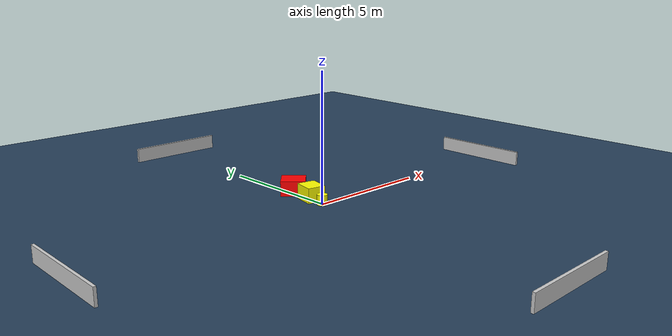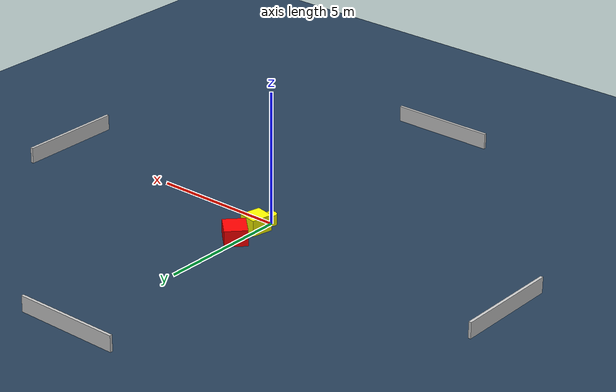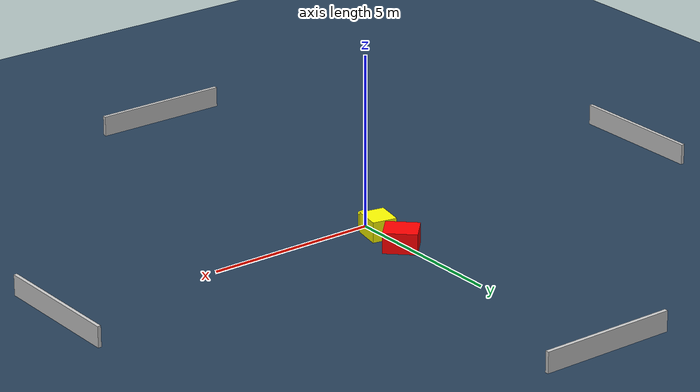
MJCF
<?xml version="1.0" ?>
<mujoco model="generated_environment">
  <option timestep="0.01" integrator="RK4" cone="elliptic"/>
  <default>
    <geom density="1"/>
  </default>
  <asset>
    <texture builtin="gradient" height="3072" name="skybox" rgb1="0.3 0.5 0.7" rgb2="0 0 0" type="skybox" width="512"/>
    <texture builtin="checker" height="300" name="groundplane" rgb1="0.2 0.3 0.4" rgb2="0.1 0.2 0.3" type="2d" width="300"/>
    <material name="groundplane" reflectance="0.2" texrepeat="5 5" texture="groundplane"/>
  </asset>
  <worldbody>
    <light dir="0 0 -1" directional="true" pos="0 0 1.5"/>
    <geom condim="3" friction="0.5 0.005 0.001" material="groundplane" name="floor" pos="0 0 0" size="0 0 0.05" type="plane"/>
    <body name="walls">
      <geom name="wall_1" condim="4" pos="-10.0 0.0 0.3" rgba="0.800000011920929 0.800000011920929 0.800000011920929 1.0" size="0.05 2.0 0.3" type="box"/>
      <geom name="wall_2" condim="4" pos="10.0 0.0 0.3" rgba="0.800000011920929 0.800000011920929 0.800000011920929 1.0" size="0.05 2.0 0.3" type="box"/>
      <geom name="wall_3" condim="4" pos="0.0 -10.0 0.3" rgba="0.800000011920929 0.800000011920929 0.800000011920929 1.0" size="2.0 0.05 0.3" type="box"/>
      <geom name="wall_4" condim="4" pos="0.0 10.0 0.3" rgba="0.800000011920929 0.800000011920929 0.800000011920929 1.0" size="2.0 0.05 0.3" type="box"/>
    </body>
    <body name="robot">
      <joint name="joint_x" type="slide" pos="0 0 0" axis="1 0 0"/>
      <joint name="joint_y" type="slide" pos="0 0 0" axis="0 1 0"/>
      <geom name="robot" type="cylinder" pos="0.0 0.0 0.2" size="0.2 0.2 0.0" mass="5.0" friction="1.0 0.005 0.0001" condim="4" rgba="1.0 1.0 0.0 1.0"/>
    </body>
    <body name="obstacle_1_movable">
      <geom name="obstacle_1_movable" condim="4" pos="0.09589775398192577 0.7065430287596557 0.3" euler="0 0 258.624909645615" friction="0.0 0.005 0.001" rgba="1.0 1.0 0.0 1.0" size="0.4059819775363368 0.36054834200168556 0.3" type="box" mass="0.1"/>
      <joint type="free"/>
    </body>
    <body name="obstacle_2_static">
      <geom name="obstacle_2_static" condim="4" pos="0.12758022655405213 1.773681479284303 0.3" euler="0 0 46.290063135789616" friction="0.0 0.005 0.001" rgba="1.0 0.0 0.0 1.0" size="0.419782519845054 0.48147236247484254 0.3" type="box"/>
    </body>
  </worldbody>
  <actuator>
    <motor name="actuator_x" joint="joint_x" gear="1" ctrlrange="-1 1"/>
    <motor name="actuator_y" joint="joint_y" gear="1" ctrlrange="-1 1"/>
  </actuator>
</mujoco>
